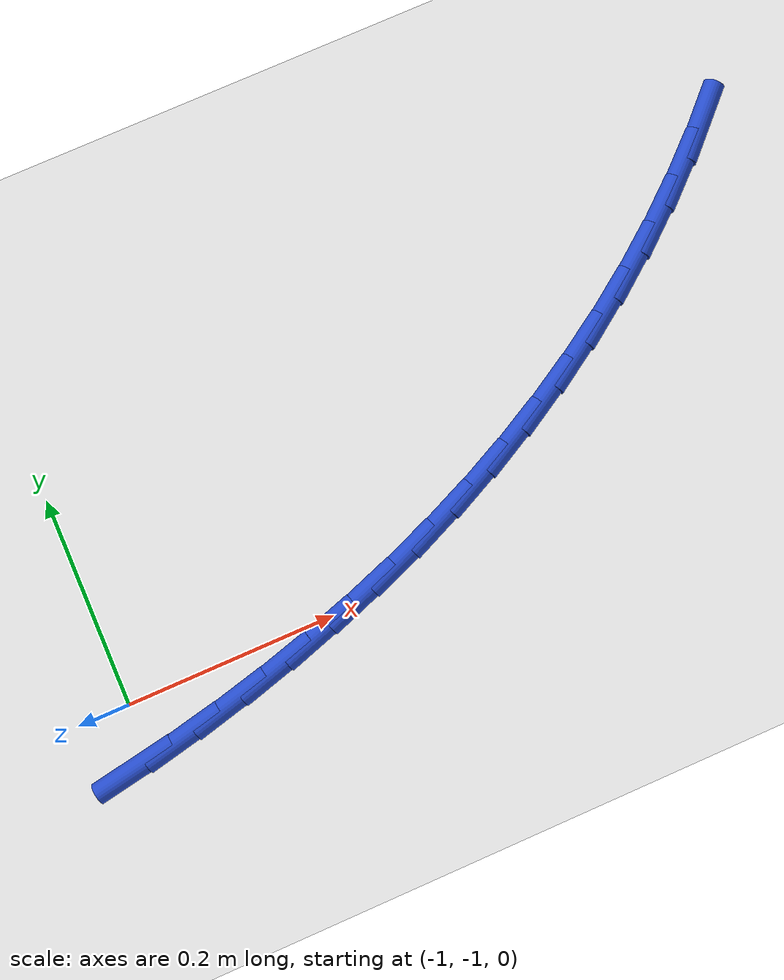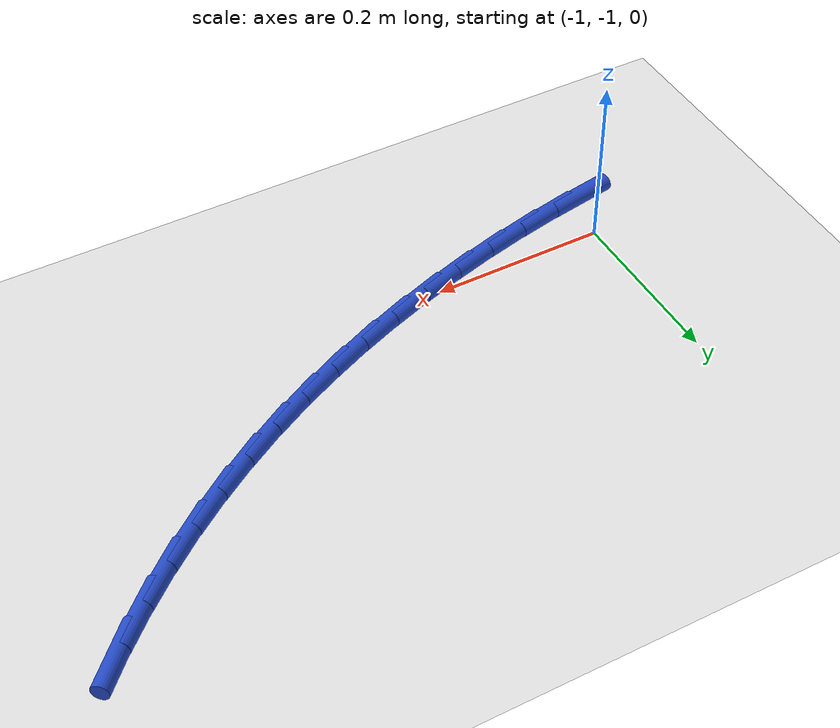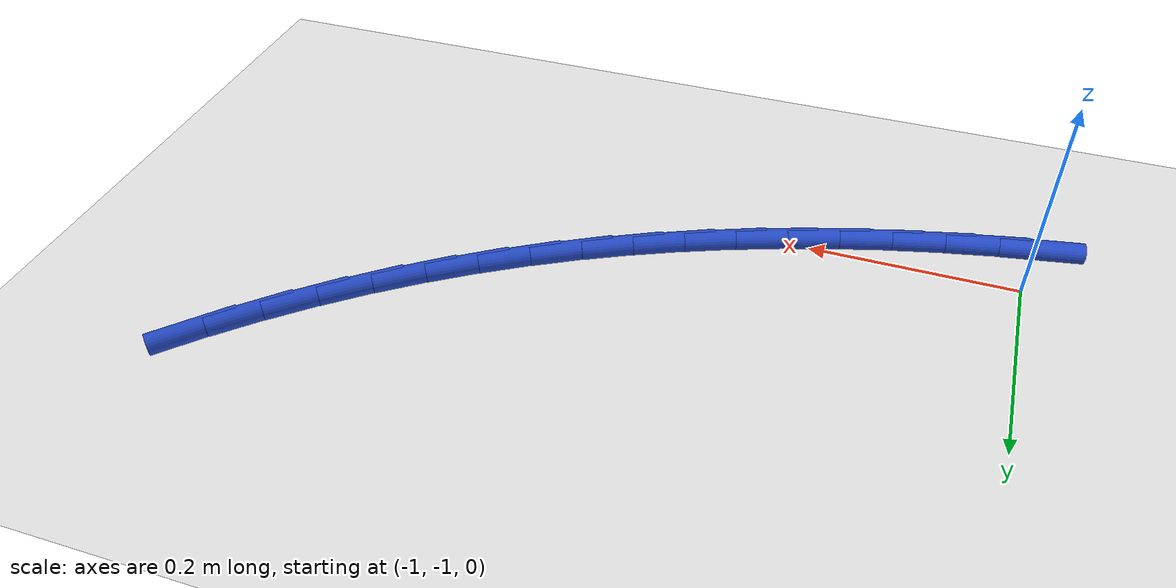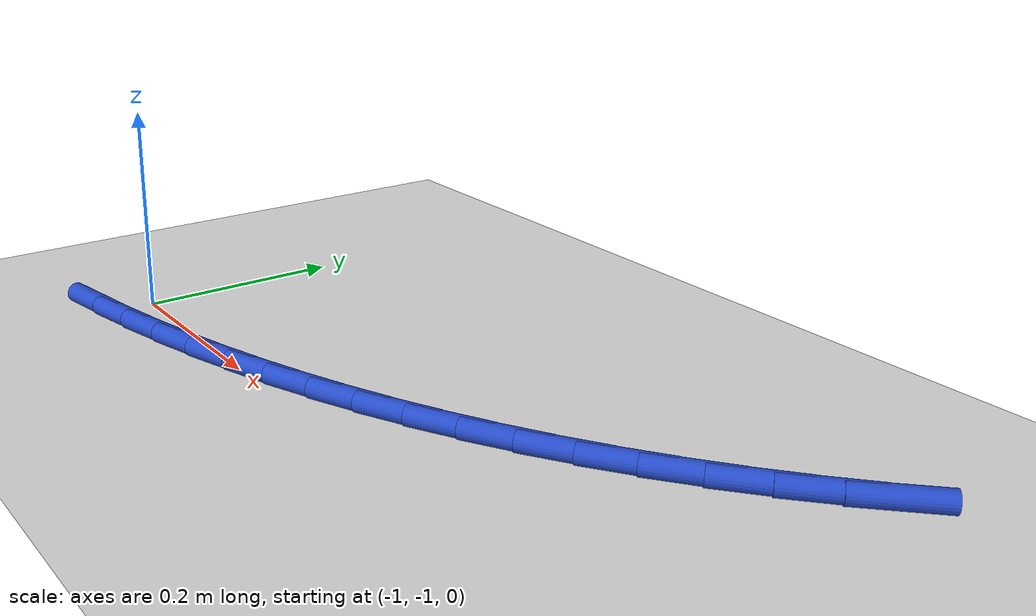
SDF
<sdf version="1.6">
 <world name="default">
  <model name="ground_plane">
   <static>1</static>
   <link name="link">
    <collision name="collision">
     <geometry><plane><normal>0 0 1</normal><size>100 100</size></plane></geometry>
     <surface><friction><ode><mu>100</mu><mu2>50</mu2></ode></friction></surface>
    </collision>
    <visual name="visual">
     <cast_shadows>0</cast_shadows>
     <geometry><plane><normal>0 0 1</normal><size>100 100</size></plane></geometry>
     <material>
      <script><uri>file://media/materials/scripts/gazebo.material</uri><name>Gazebo/WhiteGlow</name></script>
     </material>
    </visual>
   </link>
  </model>
  <model name="line">
   <link name="link_98">
    <pose>-1.0133890460676516 -1.0536537886122364 0.01 0 1.57 0.1726685225462174</pose>
    <collision name="collision">
     <geometry><cylinder><radius>0.01</radius><length>0.08</length></cylinder></geometry>
    </collision>
    <visual name="visual">
     <material>
      <script><name>Gazebo/Blue</name><uri>file://media/materials/scripts/gazebo.material</uri></script>
     </material>
     <geometry><cylinder><radius>0.01</radius><length>0.08</length></cylinder></geometry>
    </visual>
   </link>
   <link name="link_99">
    <pose>-0.9633890579607627 -1.0449335286331347 0.01 0 1.57 0.2089719597465625</pose>
    <collision name="collision">
     <geometry><cylinder><radius>0.01</radius><length>0.08</length></cylinder></geometry>
    </collision>
    <visual name="visual">
     <material>
      <script><name>Gazebo/Blue</name><uri>file://media/materials/scripts/gazebo.material</uri></script>
     </material>
     <geometry><cylinder><radius>0.01</radius><length>0.08</length></cylinder></geometry>
    </visual>
   </link>
   <link name="link_100">
    <pose>-0.9137714842371093 -1.0344112322023906 0.01 0 1.57 0.24150885176817724</pose>
    <collision name="collision">
     <geometry><cylinder><radius>0.01</radius><length>0.08</length></cylinder></geometry>
    </collision>
    <visual name="visual">
     <material>
      <script><name>Gazebo/Blue</name><uri>file://media/materials/scripts/gazebo.material</uri></script>
     </material>
     <geometry><cylinder><radius>0.01</radius><length>0.08</length></cylinder></geometry>
    </visual>
   </link>
   <link name="link_101">
    <pose>-0.8647029133989907 -1.022324833283734 0.01 0 1.57 0.2737807733060926</pose>
    <collision name="collision">
     <geometry><cylinder><radius>0.01</radius><length>0.08</length></cylinder></geometry>
    </collision>
    <visual name="visual">
     <material>
      <script><name>Gazebo/Blue</name><uri>file://media/materials/scripts/gazebo.material</uri></script>
     </material>
     <geometry><cylinder><radius>0.01</radius><length>0.08</length></cylinder></geometry>
    </visual>
   </link>
   <link name="link_102">
    <pose>-0.8162703811030044 -1.008723390561726 0.01 0 1.57 0.30728083876292894</pose>
    <collision name="collision">
     <geometry><cylinder><radius>0.01</radius><length>0.08</length></cylinder></geometry>
    </collision>
    <visual name="visual">
     <material>
      <script><name>Gazebo/Blue</name><uri>file://media/materials/scripts/gazebo.material</uri></script>
     </material>
     <geometry><cylinder><radius>0.01</radius><length>0.08</length></cylinder></geometry>
    </visual>
   </link>
   <link name="link_103">
    <pose>-0.7685257693988574 -0.9935725006240427 0.01 0 1.57 0.3420353384475463</pose>
    <collision name="collision">
     <geometry><cylinder><radius>0.01</radius><length>0.08</length></cylinder></geometry>
    </collision>
    <visual name="visual">
     <material>
      <script><name>Gazebo/Blue</name><uri>file://media/materials/scripts/gazebo.material</uri></script>
     </material>
     <geometry><cylinder><radius>0.01</radius><length>0.08</length></cylinder></geometry>
    </visual>
   </link>
   <link name="link_104">
    <pose>-0.7215208049999396 -0.9768373912570961 0.01 0 1.57 0.3780540512215028</pose>
    <collision name="collision">
     <geometry><cylinder><radius>0.01</radius><length>0.08</length></cylinder></geometry>
    </collision>
    <visual name="visual">
     <material>
      <script><name>Gazebo/Blue</name><uri>file://media/materials/scripts/gazebo.material</uri></script>
     </material>
     <geometry><cylinder><radius>0.01</radius><length>0.08</length></cylinder></geometry>
    </visual>
   </link>
   <link name="link_105">
    <pose>-0.6753072146196408 -0.9584832902472988 0.01 0 1.57 0.41533475238554385</pose>
    <collision name="collision">
     <geometry><cylinder><radius>0.01</radius><length>0.08</length></cylinder></geometry>
    </collision>
    <visual name="visual">
     <material>
      <script><name>Gazebo/Blue</name><uri>file://media/materials/scripts/gazebo.material</uri></script>
     </material>
     <geometry><cylinder><radius>0.01</radius><length>0.08</length></cylinder></geometry>
    </visual>
   </link>
   <link name="link_106">
    <pose>-0.6299367249713514 -0.938475425381064 0.01 0 1.57 0.45386136388753795</pose>
    <collision name="collision">
     <geometry><cylinder><radius>0.01</radius><length>0.08</length></cylinder></geometry>
    </collision>
    <visual name="visual">
     <material>
      <script><name>Gazebo/Blue</name><uri>file://media/materials/scripts/gazebo.material</uri></script>
     </material>
     <geometry><cylinder><radius>0.01</radius><length>0.08</length></cylinder></geometry>
    </visual>
   </link>
   <link name="link_107">
    <pose>-0.5854610627684613 -0.9167790244448034 0.01 0 1.57 0.4936021925851882</pose>
    <collision name="collision">
     <geometry><cylinder><radius>0.01</radius><length>0.08</length></cylinder></geometry>
    </collision>
    <visual name="visual">
     <material>
      <script><name>Gazebo/Blue</name><uri>file://media/materials/scripts/gazebo.material</uri></script>
     </material>
     <geometry><cylinder><radius>0.01</radius><length>0.08</length></cylinder></geometry>
    </visual>
   </link>
   <link name="link_108">
    <pose>-0.541931954724362 -0.8933593152249305 0.01 0 1.57 0.5345083727600722</pose>
    <collision name="collision">
     <geometry><cylinder><radius>0.01</radius><length>0.08</length></cylinder></geometry>
    </collision>
    <visual name="visual">
     <material>
      <script><name>Gazebo/Blue</name><uri>file://media/materials/scripts/gazebo.material</uri></script>
     </material>
     <geometry><cylinder><radius>0.01</radius><length>0.08</length></cylinder></geometry>
    </visual>
   </link>
   <link name="link_109">
    <pose>-0.49940112755244276 -0.8681815255078575 0.01 0 1.57 0.5765126457386627</pose>
    <collision name="collision">
     <geometry><cylinder><radius>0.01</radius><length>0.08</length></cylinder></geometry>
    </collision>
    <visual name="visual">
     <material>
      <script><name>Gazebo/Blue</name><uri>file://media/materials/scripts/gazebo.material</uri></script>
     </material>
     <geometry><cylinder><radius>0.01</radius><length>0.08</length></cylinder></geometry>
    </visual>
   </link>
   <link name="link_110">
    <pose>-0.45792030796609356 -0.8412108830799967 0.01 0 1.57 0.6195226398103292</pose>
    <collision name="collision">
     <geometry><cylinder><radius>0.01</radius><length>0.08</length></cylinder></geometry>
    </collision>
    <visual name="visual">
     <material>
      <script><name>Gazebo/Blue</name><uri>file://media/materials/scripts/gazebo.material</uri></script>
     </material>
     <geometry><cylinder><radius>0.01</radius><length>0.08</length></cylinder></geometry>
    </visual>
   </link>
   <link name="link_111">
    <pose>-0.4175417855262095 -0.8124133812866213 0.01 0 1.57 0.6631771862625345</pose>
    <collision name="collision">
     <geometry><cylinder><radius>0.01</radius><length>0.08</length></cylinder></geometry>
    </collision>
    <visual name="visual">
     <material>
      <script><name>Gazebo/Blue</name><uri>file://media/materials/scripts/gazebo.material</uri></script>
     </material>
     <geometry><cylinder><radius>0.01</radius><length>0.08</length></cylinder></geometry>
    </visual>
   </link>
   <link name="link_112">
    <pose>-0.37834600107206656 -0.7817933035257065 0.01 0 1.57 0.7071677100970125</pose>
    <collision name="collision">
     <geometry><cylinder><radius>0.01</radius><length>0.08</length></cylinder></geometry>
    </collision>
    <visual name="visual">
     <material>
      <script><name>Gazebo/Blue</name><uri>file://media/materials/scripts/gazebo.material</uri></script>
     </material>
     <geometry><cylinder><radius>0.01</radius><length>0.08</length></cylinder></geometry>
    </visual>
   </link>
   <link name="link_113">
    <pose>-0.34045407314910714 -0.7494102611093562 0.01 0 1.57 0.7516499537169593</pose>
    <collision name="collision">
     <geometry><cylinder><radius>0.01</radius><length>0.08</length></cylinder></geometry>
    </collision>
    <visual name="visual">
     <material>
      <script><name>Gazebo/Blue</name><uri>file://media/materials/scripts/gazebo.material</uri></script>
     </material>
     <geometry><cylinder><radius>0.01</radius><length>0.08</length></cylinder></geometry>
    </visual>
   </link>
   <link name="link_114">
    <pose>-0.30399029533032246 -0.7153281838737039 0.01 0 1.57 0.7968073385135147</pose>
    <collision name="collision">
     <geometry><cylinder><radius>0.01</radius><length>0.08</length></cylinder></geometry>
    </collision>
    <visual name="visual">
     <material>
      <script><name>Gazebo/Blue</name><uri>file://media/materials/scripts/gazebo.material</uri></script>
     </material>
     <geometry><cylinder><radius>0.01</radius><length>0.08</length></cylinder></geometry>
    </visual>
   </link>
  </model>
 </world>
</sdf>
